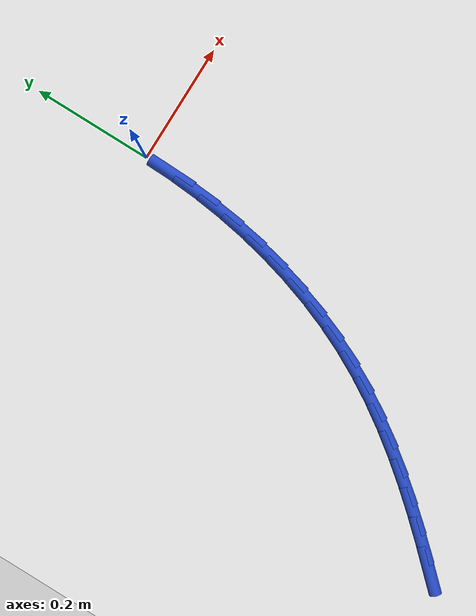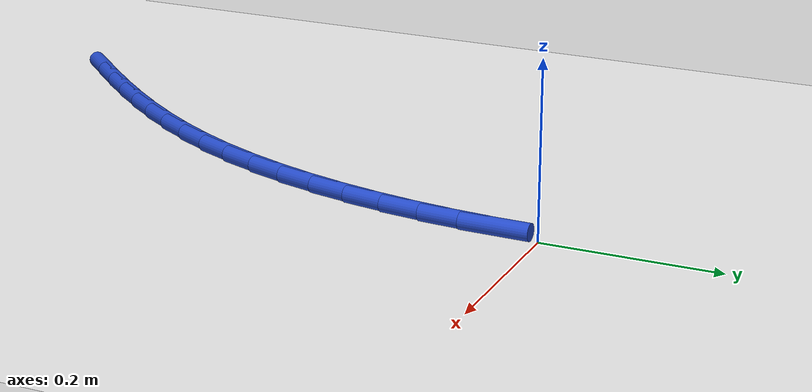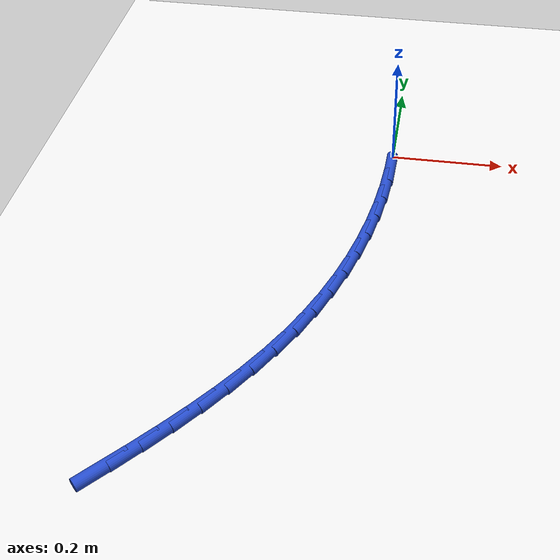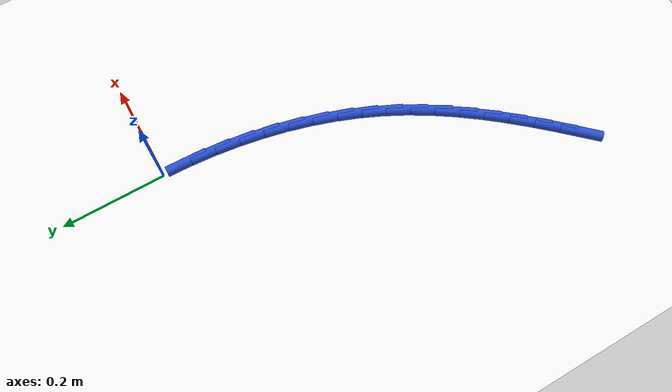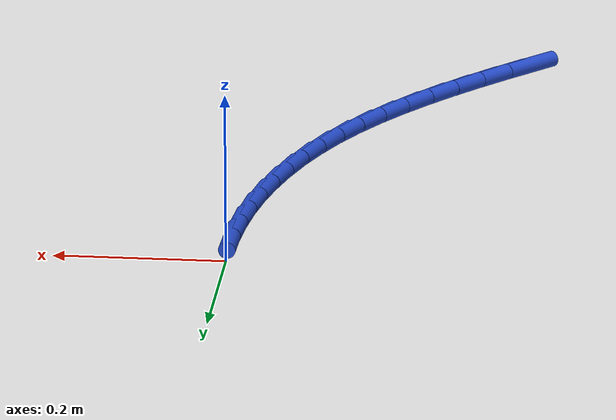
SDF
<sdf version="1.6">
 <world name="default">
  <model name="ground_plane">
   <static>1</static>
   <link name="link">
    <collision name="collision">
     <geometry><plane><normal>0 0 1</normal><size>100 100</size></plane></geometry>
     <surface><friction><ode><mu>100</mu><mu2>50</mu2></ode></friction></surface>
    </collision>
    <visual name="visual">
     <cast_shadows>0</cast_shadows>
     <geometry><plane><normal>0 0 1</normal><size>100 100</size></plane></geometry>
     <material>
      <script><uri>file://media/materials/scripts/gazebo.material</uri><name>Gazebo/WhiteGlow</name></script>
     </material>
    </visual>
   </link>
  </model>
  <model name="line">
   <link name="link_123">
    <pose>-0.31356231979620486 -0.7175688182188829 0.01 0 1.57 0.816557213919551</pose>
    <collision name="collision">
     <geometry><cylinder><radius>0.01</radius><length>0.08</length></cylinder></geometry>
    </collision>
    <visual name="visual">
     <material>
      <script><name>Gazebo/Blue</name><uri>file://media/materials/scripts/gazebo.material</uri></script>
     </material>
     <geometry><cylinder><radius>0.01</radius><length>0.08</length></cylinder></geometry>
    </visual>
   </link>
   <link name="link_124">
    <pose>-0.28056594702742954 -0.6824493328398389 0.01 0 1.57 0.8384029607589519</pose>
    <collision name="collision">
     <geometry><cylinder><radius>0.01</radius><length>0.08</length></cylinder></geometry>
    </collision>
    <visual name="visual">
     <material>
      <script><name>Gazebo/Blue</name><uri>file://media/materials/scripts/gazebo.material</uri></script>
     </material>
     <geometry><cylinder><radius>0.01</radius><length>0.08</length></cylinder></geometry>
    </visual>
   </link>
   <link name="link_125">
    <pose>-0.24862835449930695 -0.6469330069107249 0.01 0 1.57 0.8660566867343245</pose>
    <collision name="collision">
     <geometry><cylinder><radius>0.01</radius><length>0.08</length></cylinder></geometry>
    </collision>
    <visual name="visual">
     <material>
      <script><name>Gazebo/Blue</name><uri>file://media/materials/scripts/gazebo.material</uri></script>
     </material>
     <geometry><cylinder><radius>0.01</radius><length>0.08</length></cylinder></geometry>
    </visual>
   </link>
   <link name="link_126">
    <pose>-0.21794655223883297 -0.6108547271404968 0.01 0 1.57 0.8996320556085593</pose>
    <collision name="collision">
     <geometry><cylinder><radius>0.01</radius><length>0.08</length></cylinder></geometry>
    </collision>
    <visual name="visual">
     <material>
      <script><name>Gazebo/Blue</name><uri>file://media/materials/scripts/gazebo.material</uri></script>
     </material>
     <geometry><cylinder><radius>0.01</radius><length>0.08</length></cylinder></geometry>
    </visual>
   </link>
   <link name="link_127">
    <pose>-0.18871755027300494 -0.574049380238112 0.01 0 1.57 0.9391811093495429</pose>
    <collision name="collision">
     <geometry><cylinder><radius>0.01</radius><length>0.08</length></cylinder></geometry>
    </collision>
    <visual name="visual">
     <material>
      <script><name>Gazebo/Blue</name><uri>file://media/materials/scripts/gazebo.material</uri></script>
     </material>
     <geometry><cylinder><radius>0.01</radius><length>0.08</length></cylinder></geometry>
    </visual>
   </link>
   <link name="link_128">
    <pose>-0.16113835862881862 -0.5363518529125264 0.01 0 1.57 0.9846570113372548</pose>
    <collision name="collision">
     <geometry><cylinder><radius>0.01</radius><length>0.08</length></cylinder></geometry>
    </collision>
    <visual name="visual">
     <material>
      <script><name>Gazebo/Blue</name><uri>file://media/materials/scripts/gazebo.material</uri></script>
     </material>
     <geometry><cylinder><radius>0.01</radius><length>0.08</length></cylinder></geometry>
    </visual>
   </link>
   <link name="link_129">
    <pose>-0.13540598733327042 -0.497597031872696 0.01 0 1.57 1.0358721387933911</pose>
    <collision name="collision">
     <geometry><cylinder><radius>0.01</radius><length>0.08</length></cylinder></geometry>
    </collision>
    <visual name="visual">
     <material>
      <script><name>Gazebo/Blue</name><uri>file://media/materials/scripts/gazebo.material</uri></script>
     </material>
     <geometry><cylinder><radius>0.01</radius><length>0.08</length></cylinder></geometry>
    </visual>
   </link>
   <link name="link_130">
    <pose>-0.11171744641335661 -0.4576198038275774 0.01 0 1.57 1.0923641674817395</pose>
    <collision name="collision">
     <geometry><cylinder><radius>0.01</radius><length>0.08</length></cylinder></geometry>
    </collision>
    <visual name="visual">
     <material>
      <script><name>Gazebo/Blue</name><uri>file://media/materials/scripts/gazebo.material</uri></script>
     </material>
     <geometry><cylinder><radius>0.01</radius><length>0.08</length></cylinder></geometry>
    </visual>
   </link>
   <link name="link_131">
    <pose>-0.0902670010765649 -0.41625915767562244 0.01 0 1.57 1.1505076165993933</pose>
    <collision name="collision">
     <geometry><cylinder><radius>0.01</radius><length>0.08</length></cylinder></geometry>
    </collision>
    <visual name="visual">
     <material>
      <script><name>Gazebo/Blue</name><uri>file://media/materials/scripts/gazebo.material</uri></script>
     </material>
     <geometry><cylinder><radius>0.01</radius><length>0.08</length></cylinder></geometry>
    </visual>
   </link>
   <link name="link_132">
    <pose>-0.07115478570291132 -0.3734947627828108 0.01 0 1.57 1.2063938497891291</pose>
    <collision name="collision">
     <geometry><cylinder><radius>0.01</radius><length>0.08</length></cylinder></geometry>
    </collision>
    <visual name="visual">
     <material>
      <script><name>Gazebo/Blue</name><uri>file://media/materials/scripts/gazebo.material</uri></script>
     </material>
     <geometry><cylinder><radius>0.01</radius><length>0.08</length></cylinder></geometry>
    </visual>
   </link>
   <link name="link_133">
    <pose>-0.054365469724458076 -0.3294788532667231 0.01 0 1.57 1.259980943163799</pose>
    <collision name="collision">
     <geometry><cylinder><radius>0.01</radius><length>0.08</length></cylinder></geometry>
    </collision>
    <visual name="visual">
     <material>
      <script><name>Gazebo/Blue</name><uri>file://media/materials/scripts/gazebo.material</uri></script>
     </material>
     <geometry><cylinder><radius>0.01</radius><length>0.08</length></cylinder></geometry>
    </visual>
   </link>
   <link name="link_134">
    <pose>-0.03987665503476595 -0.284374225827331 0.01 0 1.57 1.3114945168124899</pose>
    <collision name="collision">
     <geometry><cylinder><radius>0.01</radius><length>0.08</length></cylinder></geometry>
    </collision>
    <visual name="visual">
     <material>
      <script><name>Gazebo/Blue</name><uri>file://media/materials/scripts/gazebo.material</uri></script>
     </material>
     <geometry><cylinder><radius>0.01</radius><length>0.08</length></cylinder></geometry>
    </visual>
   </link>
   <link name="link_135">
    <pose>-0.027665943527395518 -0.23834367716460547 0.01 0 1.57 1.361178852767668</pose>
    <collision name="collision">
     <geometry><cylinder><radius>0.01</radius><length>0.08</length></cylinder></geometry>
    </collision>
    <visual name="visual">
     <material>
      <script><name>Gazebo/Blue</name><uri>file://media/materials/scripts/gazebo.material</uri></script>
     </material>
     <geometry><cylinder><radius>0.01</radius><length>0.08</length></cylinder></geometry>
    </visual>
   </link>
   <link name="link_136">
    <pose>-0.017710937095907948 -0.19155000397851965 0.01 0 1.57 1.4092897294732285</pose>
    <collision name="collision">
     <geometry><cylinder><radius>0.01</radius><length>0.08</length></cylinder></geometry>
    </collision>
    <visual name="visual">
     <material>
      <script><name>Gazebo/Blue</name><uri>file://media/materials/scripts/gazebo.material</uri></script>
     </material>
     <geometry><cylinder><radius>0.01</radius><length>0.08</length></cylinder></geometry>
    </visual>
   </link>
   <link name="link_137">
    <pose>-0.00998923763386384 -0.14415600296904452 0.01 0 1.57 1.4560895745277604</pose>
    <collision name="collision">
     <geometry><cylinder><radius>0.01</radius><length>0.08</length></cylinder></geometry>
    </collision>
    <visual name="visual">
     <material>
      <script><name>Gazebo/Blue</name><uri>file://media/materials/scripts/gazebo.material</uri></script>
     </material>
     <geometry><cylinder><radius>0.01</radius><length>0.08</length></cylinder></geometry>
    </visual>
   </link>
   <link name="link_138">
    <pose>-0.004478447034823952 -0.09632447083615181 0.01 0 1.57 1.5018445390610125</pose>
    <collision name="collision">
     <geometry><cylinder><radius>0.01</radius><length>0.08</length></cylinder></geometry>
    </collision>
    <visual name="visual">
     <material>
      <script><name>Gazebo/Blue</name><uri>file://media/materials/scripts/gazebo.material</uri></script>
     </material>
     <geometry><cylinder><radius>0.01</radius><length>0.08</length></cylinder></geometry>
    </visual>
   </link>
   <link name="link_139">
    <pose>-0.0011561671923490799 -0.048218204279813257 0.01 0 1.57 1.5468231052260764</pose>
    <collision name="collision">
     <geometry><cylinder><radius>0.01</radius><length>0.08</length></cylinder></geometry>
    </collision>
    <visual name="visual">
     <material>
      <script><name>Gazebo/Blue</name><uri>file://media/materials/scripts/gazebo.material</uri></script>
     </material>
     <geometry><cylinder><radius>0.01</radius><length>0.08</length></cylinder></geometry>
    </visual>
   </link>
  </model>
 </world>
</sdf>
